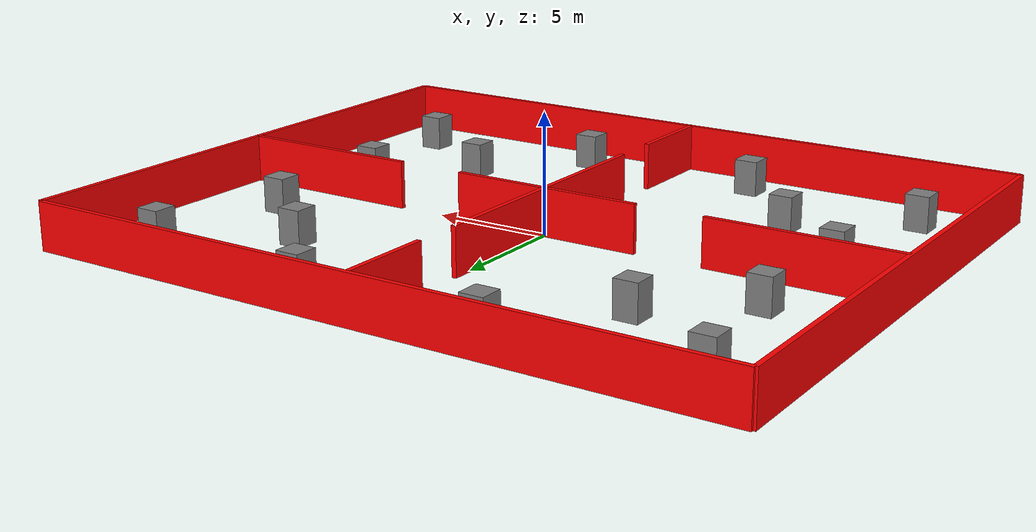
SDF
<?xml version="1.0" ?>
<sdf version="1.7">
  <model name="Huis_met_meubels">
    <static>true</static>

    <model name="wall_north">
      <pose>0 12 1 0 0 0</pose>
      <link name="link">
        <collision name="collision"><geometry><box><size>30 0.2 2</size></box></geometry></collision>
        <visual name="visual">
          <geometry><box><size>30 0.2 2</size></box></geometry>
          <material>
            <ambient>1 0 0 1</ambient>
            <diffuse>1 0 0 1</diffuse>
          </material>
        </visual>
      </link>
    </model>

    <model name="wall_south">
      <pose>0 -12 1 0 0 0</pose>
      <link name="link">
        <collision name="collision"><geometry><box><size>30 0.2 2</size></box></geometry></collision>
        <visual name="visual">
          <geometry><box><size>30 0.2 2</size></box></geometry>
          <material>
            <ambient>1 0 0 1</ambient>
            <diffuse>1 0 0 1</diffuse>
          </material>
        </visual>
      </link>
    </model>

    <model name="wall_east">
      <pose>15 0 1 0 0 0</pose>
      <link name="link">
        <collision name="collision"><geometry><box><size>0.2 24 2</size></box></geometry></collision>
        <visual name="visual">
          <geometry><box><size>0.2 24 2</size></box></geometry>
          <material>
            <ambient>1 0 0 1</ambient>
            <diffuse>1 0 0 1</diffuse>
          </material>
        </visual>
      </link>
    </model>

    <model name="wall_west">
      <pose>-15 0 1 0 0 0</pose>
      <link name="link">
        <collision name="collision"><geometry><box><size>0.2 24 2</size></box></geometry></collision>
        <visual name="visual">
          <geometry><box><size>0.2 24 2</size></box></geometry>
          <material>
            <ambient>1 0 0 1</ambient>
            <diffuse>1 0 0 1</diffuse>
          </material>
        </visual>
      </link>
    </model>

    <model name="mid_wall_left_outer">
      <pose>-11 0 1 0 0 0</pose>
      <link name="link">
        <collision name="c"><geometry><box><size>8 0.2 2</size></box></geometry></collision>
        <visual name="v"><geometry><box><size>8 0.2 2</size></box></geometry>
        <material>
            <ambient>1 0 0 1</ambient>
            <diffuse>1 0 0 1</diffuse>
          </material></visual>
      </link>
    </model>

    <model name="mid_wall_left_inner">
      <pose>-2.1 0 1 0 0 0</pose>
      <link name="link">
        <collision name="c"><geometry><box><size>4 0.2 2</size></box></geometry></collision>
        <visual name="v"><geometry><box><size>4 0.2 2</size></box></geometry>
        <material>
            <ambient>1 0 0 1</ambient>
            <diffuse>1 0 0 1</diffuse>
          </material></visual>
      </link>
    </model>

    <model name="mid_wall_right_inner">
      <pose>2.1 0 1 0 0 0</pose>
      <link name="link">
        <collision name="c"><geometry><box><size>4 0.2 2</size></box></geometry></collision>
        <visual name="v"><geometry><box><size>4 0.2 2</size></box></geometry>
        <material>
            <ambient>1 0 0 1</ambient>
            <diffuse>1 0 0 1</diffuse>
          </material></visual>
      </link>
    </model>

    <model name="mid_wall_right_outer">
      <pose>11 0 1 0 0 0</pose>
      <link name="link">
        <collision name="c"><geometry><box><size>8 0.2 2</size></box></geometry></collision>
        <visual name="v"><geometry><box><size>8 0.2 2</size></box></geometry>
        <material>
            <ambient>1 0 0 1</ambient>
            <diffuse>1 0 0 1</diffuse>
          </material></visual>
      </link>
    </model>

    <model name="mid_vertical_top"><pose>0 10 1 0 0 0</pose>
      <link name="link"><collision name="collision"><geometry><box><size>0.2 4 2</size></box></geometry></collision>
      <visual name="visual"><geometry><box><size>0.2 4 2</size></box></geometry>
      <material>
            <ambient>1 0 0 1</ambient>
            <diffuse>1 0 0 1</diffuse>
          </material></visual></link>
    </model>

   <model name="mid_vertical_upper">
      <pose>0 3 1 0 0 0</pose> <link name="link">
        <collision name="collision">
          <geometry><box><size>0.2 6 2</size></box></geometry> </collision>
        <visual name="visual">
          <geometry><box><size>0.2 6 2</size></box></geometry>
          <material>
            <ambient>1 0 0 1</ambient>
            <diffuse>1 0 0 1</diffuse>
          </material>
        </visual>
      </link>
    </model>

    <model name="mid_vertical_lower">
      <pose>0 -3 1 0 0 0</pose> <link name="link">
        <collision name="collision">
          <geometry><box><size>0.2 6 2</size></box></geometry> </collision>
        <visual name="visual">
          <geometry><box><size>0.2 6 2</size></box></geometry>
          <material>
            <ambient>1 0 0 1</ambient>
            <diffuse>1 0 0 1</diffuse>
          </material>
        </visual>
      </link>
    </model>

    <model name="mid_vertical_bottom"><pose>0 -10 1 0 0 0</pose>
      <link name="link"><collision name="collision"><geometry><box><size>0.2 4 2</size></box></geometry></collision>
      <visual name="visual"><geometry><box><size>0.2 4 2</size></box></geometry>
      <material>
            <ambient>1 0 0 1</ambient>
            <diffuse>1 0 0 1</diffuse>
          </material></visual></link>
    </model>

    <model name="nw_1"><pose>-12 9 0.75 0 0 0</pose><link name="link"><collision name="c"><geometry><box><size>1 1 1.5</size></box></geometry></collision><visual name="v"><geometry><box><size>1 1 1.5</size></box></geometry><material><ambient>0.5 0.5 0.5 1</ambient><diffuse>0.5 0.5 0.5 1</diffuse></material></visual></link></model>
    <model name="nw_2"><pose>-4 10 0.75 0 0 0</pose><link name="link"><collision name="c"><geometry><box><size>1 1 1.5</size></box></geometry></collision><visual name="v"><geometry><box><size>1 1 1.5</size></box></geometry><material><ambient>0.5 0.5 0.5 1</ambient><diffuse>0.5 0.5 0.5 1</diffuse></material></visual></link></model>
    <model name="nw_3"><pose>-11 3 0.75 0 0 0</pose><link name="link"><collision name="c"><geometry><box><size>1 1 1.5</size></box></geometry></collision><visual name="v"><geometry><box><size>1 1 1.5</size></box></geometry><material><ambient>0.5 0.5 0.5 1</ambient><diffuse>0.5 0.5 0.5 1</diffuse></material></visual></link></model>
    <model name="nw_4"><pose>-7.5 6 0.75 0 0 0</pose> <link name="link"><collision name="c"><geometry><box><size>1 1 1.5</size></box></geometry></collision><visual name="v"><geometry><box><size>1 1 1.5</size></box></geometry><material><ambient>0.5 0.5 0.5 1</ambient><diffuse>0.5 0.5 0.5 1</diffuse></material></visual></link></model>

    <model name="ne_1"><pose>12 9 0.75 0 0 0</pose><link name="link"><collision name="c"><geometry><box><size>1 1 1.5</size></box></geometry></collision><visual name="v"><geometry><box><size>1 1 1.5</size></box></geometry><material><ambient>0.5 0.5 0.5 1</ambient><diffuse>0.5 0.5 0.5 1</diffuse></material></visual></link></model>
    <model name="ne_2"><pose>4 10 0.75 0 0 0</pose><link name="link"><collision name="c"><geometry><box><size>1 1 1.5</size></box></geometry></collision><visual name="v"><geometry><box><size>1 1 1.5</size></box></geometry><material><ambient>0.5 0.5 0.5 1</ambient><diffuse>0.5 0.5 0.5 1</diffuse></material></visual></link></model>
    <model name="ne_3"><pose>11 3 0.75 0 0 0</pose><link name="link"><collision name="c"><geometry><box><size>1 1 1.5</size></box></geometry></collision><visual name="v"><geometry><box><size>1 1 1.5</size></box></geometry><material><ambient>0.5 0.5 0.5 1</ambient><diffuse>0.5 0.5 0.5 1</diffuse></material></visual></link></model>
    <model name="ne_4"><pose>7.5 6 0.75 0 0 0</pose> <link name="link"><collision name="c"><geometry><box><size>1 1 1.5</size></box></geometry></collision><visual name="v"><geometry><box><size>1 1 1.5</size></box></geometry><material><ambient>0.5 0.5 0.5 1</ambient><diffuse>0.5 0.5 0.5 1</diffuse></material></visual></link></model>

    <model name="sw_1"><pose>-12 -9 0.75 0 0 0</pose><link name="link"><collision name="c"><geometry><box><size>1 1 1.5</size></box></geometry></collision><visual name="v"><geometry><box><size>1 1 1.5</size></box></geometry><material><ambient>0.5 0.5 0.5 1</ambient><diffuse>0.5 0.5 0.5 1</diffuse></material></visual></link></model>
    <model name="sw_2"><pose>-4 -10 0.75 0 0 0</pose><link name="link"><collision name="c"><geometry><box><size>1 1 1.5</size></box></geometry></collision><visual name="v"><geometry><box><size>1 1 1.5</size></box></geometry><material><ambient>0.5 0.5 0.5 1</ambient><diffuse>0.5 0.5 0.5 1</diffuse></material></visual></link></model>
    <model name="sw_3"><pose>-11 -3 0.75 0 0 0</pose><link name="link"><collision name="c"><geometry><box><size>1 1 1.5</size></box></geometry></collision><visual name="v"><geometry><box><size>1 1 1.5</size></box></geometry><material><ambient>0.5 0.5 0.5 1</ambient><diffuse>0.5 0.5 0.5 1</diffuse></material></visual></link></model>
    <model name="sw_4"><pose>-7.5 -6 0.75 0 0 0</pose> <link name="link"><collision name="c"><geometry><box><size>1 1 1.5</size></box></geometry></collision><visual name="v"><geometry><box><size>1 1 1.5</size></box></geometry><material><ambient>0.5 0.5 0.5 1</ambient><diffuse>0.5 0.5 0.5 1</diffuse></material></visual></link></model>

    <model name="se_1"><pose>12 -9 0.75 0 0 0</pose><link name="link"><collision name="c"><geometry><box><size>1 1 1.5</size></box></geometry></collision><visual name="v"><geometry><box><size>1 1 1.5</size></box></geometry><material><ambient>0.5 0.5 0.5 1</ambient><diffuse>0.5 0.5 0.5 1</diffuse></material></visual></link></model>
    <model name="se_2"><pose>4 -10 0.75 0 0 0</pose><link name="link"><collision name="c"><geometry><box><size>1 1 1.5</size></box></geometry></collision><visual name="v"><geometry><box><size>1 1 1.5</size></box></geometry><material><ambient>0.5 0.5 0.5 1</ambient><diffuse>0.5 0.5 0.5 1</diffuse></material></visual></link></model>
    <model name="se_3"><pose>11 -3 0.75 0 0 0</pose><link name="link"><collision name="c"><geometry><box><size>1 1 1.5</size></box></geometry></collision><visual name="v"><geometry><box><size>1 1 1.5</size></box></geometry><material><ambient>0.5 0.5 0.5 1</ambient><diffuse>0.5 0.5 0.5 1</diffuse></material></visual></link></model>
    <model name="se_4"><pose>7.5 -6 0.75 0 0 0</pose> <link name="link"><collision name="c"><geometry><box><size>1 1 1.5</size></box></geometry></collision><visual name="v"><geometry><box><size>1 1 1.5</size></box></geometry><material><ambient>0.5 0.5 0.5 1</ambient><diffuse>0.5 0.5 0.5 1</diffuse></material></visual></link></model>

  </model>
</sdf>
